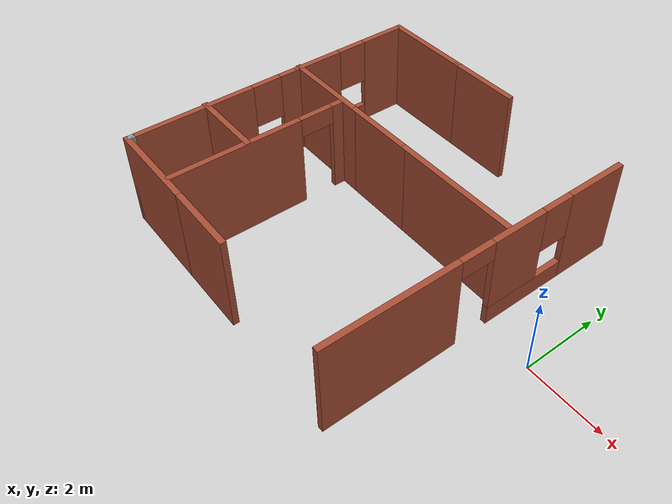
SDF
<sdf version="1.7">
 <model name="my_test_world">
  <link name="Wall_38">
   <pose>-1.46664 -0.111818 0 0 0 -1.5708</pose>
   <visual name="Wall_38_Visual_0">
    <pose>-3.31199 0 1.25 0 -0 0</pose>
    <geometry><box><size>1.62602 0.15 2.5</size></box></geometry>
    <material>
     <script><uri>file://media/materials/scripts/gazebo.material</uri><name>Gazebo/Bricks</name></script>
     <ambient>1 1 1 1</ambient>
     <shader type="pixel"/>
    </material>
    <meta><layer>0</layer></meta>
   </visual>
   <visual name="Wall_38_Visual_2">
    <pose>-1.36745 0 0.25 0 -0 0</pose>
    <geometry><box><size>2.26306 0.15 0.5</size></box></geometry>
    <material>
     <script><uri>file://media/materials/scripts/gazebo.material</uri><name>Gazebo/Bricks</name></script>
     <ambient>1 1 1 1</ambient>
     <shader type="pixel"/>
    </material>
    <meta><layer>0</layer></meta>
   </visual>
   <visual name="Wall_38_Visual_1">
    <pose>2.39454 0 1.25 0 -0 0</pose>
    <geometry><box><size>3.46092 0.15 2.5</size></box></geometry>
    <material>
     <script><uri>file://media/materials/scripts/gazebo.material</uri><name>Gazebo/Bricks</name></script>
     <ambient>1 1 1 1</ambient>
     <shader type="pixel"/>
    </material>
    <meta><layer>0</layer></meta>
   </visual>
   <visual name="Wall_38_Visual_3">
    <pose>-0.967453 0 1.5 0 -0 0</pose>
    <geometry><box><size>1.46306 0.15 2</size></box></geometry>
    <material>
     <script><uri>file://media/materials/scripts/gazebo.material</uri><name>Gazebo/Bricks</name></script>
     <ambient>1 1 1 1</ambient>
     <shader type="pixel"/>
    </material>
    <meta><layer>0</layer></meta>
   </visual>
   <visual name="Wall_38_Visual_4">
    <pose>-2.09898 0 1.9 0 -0 0</pose>
    <geometry><box><size>0.8 0.15 1.2</size></box></geometry>
    <material>
     <script><uri>file://media/materials/scripts/gazebo.material</uri><name>Gazebo/Bricks</name></script>
     <ambient>1 1 1 1</ambient>
     <shader type="pixel"/>
    </material>
    <meta><layer>0</layer></meta>
   </visual>
   <visual name="Wall_38_Visual_5">
    <pose>0.214077 0 2.25 0 -0 0</pose>
    <geometry><box><size>0.9 0.15 0.5</size></box></geometry>
    <material>
     <script><uri>file://media/materials/scripts/gazebo.material</uri><name>Gazebo/Bricks</name></script>
     <ambient>1 1 1 1</ambient>
     <shader type="pixel"/>
    </material>
    <meta><layer>0</layer></meta>
   </visual>
   <collision name="Wall_38_Collision_0">
    <pose>-3.31199 0 1.25 0 -0 0</pose>
    <geometry><box><size>1.62602 0.15 2.5</size></box></geometry>
    <surface>
     <friction>
      <ode><mu>1</mu><mu2>1</mu2><fdir1>0 0 0</fdir1><slip1>0</slip1><slip2>0</slip2></ode>
      <torsional>
       <coefficient>1</coefficient>
       <patch_radius>0</patch_radius>
       <surface_radius>0</surface_radius>
       <use_patch_radius>1</use_patch_radius>
       <ode><slip>0</slip></ode>
      </torsional>
     </friction>
     <bounce><restitution_coefficient>0</restitution_coefficient><threshold>1e+06</threshold></bounce>
     <contact>
      <collide_without_contact>0</collide_without_contact>
      <collide_without_contact_bitmask>1</collide_without_contact_bitmask>
      <collide_bitmask>1</collide_bitmask>
      <ode>
       <soft_cfm>0</soft_cfm>
       <soft_erp>0.2</soft_erp>
       <kp>1e+13</kp>
       <kd>1</kd>
       <max_vel>0.01</max_vel>
       <min_depth>0</min_depth>
      </ode>
      <bullet>
       <split_impulse>1</split_impulse>
       <split_impulse_penetration_threshold>-0.01</split_impulse_penetration_threshold>
       <soft_cfm>0</soft_cfm>
       <soft_erp>0.2</soft_erp>
       <kp>1e+13</kp>
       <kd>1</kd>
      </bullet>
     </contact>
    </surface>
   </collision>
   <collision name="Wall_38_Collision_1">
    <pose>2.39454 0 1.25 0 -0 0</pose>
    <geometry><box><size>3.46092 0.15 2.5</size></box></geometry>
    <surface>
     <friction>
      <ode><mu>1</mu><mu2>1</mu2><fdir1>0 0 0</fdir1><slip1>0</slip1><slip2>0</slip2></ode>
      <torsional>
       <coefficient>1</coefficient>
       <patch_radius>0</patch_radius>
       <surface_radius>0</surface_radius>
       <use_patch_radius>1</use_patch_radius>
       <ode><slip>0</slip></ode>
      </torsional>
     </friction>
     <bounce><restitution_coefficient>0</restitution_coefficient><threshold>1e+06</threshold></bounce>
     <contact>
      <collide_without_contact>0</collide_without_contact>
      <collide_without_contact_bitmask>1</collide_without_contact_bitmask>
      <collide_bitmask>1</collide_bitmask>
      <ode>
       <soft_cfm>0</soft_cfm>
       <soft_erp>0.2</soft_erp>
       <kp>1e+13</kp>
       <kd>1</kd>
       <max_vel>0.01</max_vel>
       <min_depth>0</min_depth>
      </ode>
      <bullet>
       <split_impulse>1</split_impulse>
       <split_impulse_penetration_threshold>-0.01</split_impulse_penetration_threshold>
       <soft_cfm>0</soft_cfm>
       <soft_erp>0.2</soft_erp>
       <kp>1e+13</kp>
       <kd>1</kd>
      </bullet>
     </contact>
    </surface>
   </collision>
   <collision name="Wall_38_Collision_2">
    <pose>-1.36745 0 0.25 0 -0 0</pose>
    <geometry><box><size>2.26306 0.15 0.5</size></box></geometry>
    <surface>
     <friction>
      <ode><mu>1</mu><mu2>1</mu2><fdir1>0 0 0</fdir1><slip1>0</slip1><slip2>0</slip2></ode>
      <torsional>
       <coefficient>1</coefficient>
       <patch_radius>0</patch_radius>
       <surface_radius>0</surface_radius>
       <use_patch_radius>1</use_patch_radius>
       <ode><slip>0</slip></ode>
      </torsional>
     </friction>
     <bounce><restitution_coefficient>0</restitution_coefficient><threshold>1e+06</threshold></bounce>
     <contact>
      <collide_without_contact>0</collide_without_contact>
      <collide_without_contact_bitmask>1</collide_without_contact_bitmask>
      <collide_bitmask>1</collide_bitmask>
      <ode>
       <soft_cfm>0</soft_cfm>
       <soft_erp>0.2</soft_erp>
       <kp>1e+13</kp>
       <kd>1</kd>
       <max_vel>0.01</max_vel>
       <min_depth>0</min_depth>
      </ode>
      <bullet>
       <split_impulse>1</split_impulse>
       <split_impulse_penetration_threshold>-0.01</split_impulse_penetration_threshold>
       <soft_cfm>0</soft_cfm>
       <soft_erp>0.2</soft_erp>
       <kp>1e+13</kp>
       <kd>1</kd>
      </bullet>
     </contact>
    </surface>
   </collision>
   <collision name="Wall_38_Collision_3">
    <pose>-0.967453 0 1.5 0 -0 0</pose>
    <geometry><box><size>1.46306 0.15 2</size></box></geometry>
    <surface>
     <friction>
      <ode><mu>1</mu><mu2>1</mu2><fdir1>0 0 0</fdir1><slip1>0</slip1><slip2>0</slip2></ode>
      <torsional>
       <coefficient>1</coefficient>
       <patch_radius>0</patch_radius>
       <surface_radius>0</surface_radius>
       <use_patch_radius>1</use_patch_radius>
       <ode><slip>0</slip></ode>
      </torsional>
     </friction>
     <bounce><restitution_coefficient>0</restitution_coefficient><threshold>1e+06</threshold></bounce>
     <contact>
      <collide_without_contact>0</collide_without_contact>
      <collide_without_contact_bitmask>1</collide_without_contact_bitmask>
      <collide_bitmask>1</collide_bitmask>
      <ode>
       <soft_cfm>0</soft_cfm>
       <soft_erp>0.2</soft_erp>
       <kp>1e+13</kp>
       <kd>1</kd>
       <max_vel>0.01</max_vel>
       <min_depth>0</min_depth>
      </ode>
      <bullet>
       <split_impulse>1</split_impulse>
       <split_impulse_penetration_threshold>-0.01</split_impulse_penetration_threshold>
       <soft_cfm>0</soft_cfm>
       <soft_erp>0.2</soft_erp>
       <kp>1e+13</kp>
       <kd>1</kd>
      </bullet>
     </contact>
    </surface>
   </collision>
   <collision name="Wall_38_Collision_4">
    <pose>-2.09898 0 1.9 0 -0 0</pose>
    <geometry><box><size>0.8 0.15 1.2</size></box></geometry>
    <surface>
     <friction>
      <ode><mu>1</mu><mu2>1</mu2><fdir1>0 0 0</fdir1><slip1>0</slip1><slip2>0</slip2></ode>
      <torsional>
       <coefficient>1</coefficient>
       <patch_radius>0</patch_radius>
       <surface_radius>0</surface_radius>
       <use_patch_radius>1</use_patch_radius>
       <ode><slip>0</slip></ode>
      </torsional>
     </friction>
     <bounce><restitution_coefficient>0</restitution_coefficient><threshold>1e+06</threshold></bounce>
     <contact>
      <collide_without_contact>0</collide_without_contact>
      <collide_without_contact_bitmask>1</collide_without_contact_bitmask>
      <collide_bitmask>1</collide_bitmask>
      <ode>
       <soft_cfm>0</soft_cfm>
       <soft_erp>0.2</soft_erp>
       <kp>1e+13</kp>
       <kd>1</kd>
       <max_vel>0.01</max_vel>
       <min_depth>0</min_depth>
      </ode>
      <bullet>
       <split_impulse>1</split_impulse>
       <split_impulse_penetration_threshold>-0.01</split_impulse_penetration_threshold>
       <soft_cfm>0</soft_cfm>
       <soft_erp>0.2</soft_erp>
       <kp>1e+13</kp>
       <kd>1</kd>
      </bullet>
     </contact>
    </surface>
   </collision>
   <collision name="Wall_38_Collision_5">
    <pose>0.214077 0 2.25 0 -0 0</pose>
    <geometry><box><size>0.9 0.15 0.5</size></box></geometry>
    <surface>
     <friction>
      <ode><mu>1</mu><mu2>1</mu2><fdir1>0 0 0</fdir1><slip1>0</slip1><slip2>0</slip2></ode>
      <torsional>
       <coefficient>1</coefficient>
       <patch_radius>0</patch_radius>
       <surface_radius>0</surface_radius>
       <use_patch_radius>1</use_patch_radius>
       <ode><slip>0</slip></ode>
      </torsional>
     </friction>
     <bounce><restitution_coefficient>0</restitution_coefficient><threshold>1e+06</threshold></bounce>
     <contact>
      <collide_without_contact>0</collide_without_contact>
      <collide_without_contact_bitmask>1</collide_without_contact_bitmask>
      <collide_bitmask>1</collide_bitmask>
      <ode>
       <soft_cfm>0</soft_cfm>
       <soft_erp>0.2</soft_erp>
       <kp>1e+13</kp>
       <kd>1</kd>
       <max_vel>0.01</max_vel>
       <min_depth>0</min_depth>
      </ode>
      <bullet>
       <split_impulse>1</split_impulse>
       <split_impulse_penetration_threshold>-0.01</split_impulse_penetration_threshold>
       <soft_cfm>0</soft_cfm>
       <soft_erp>0.2</soft_erp>
       <kp>1e+13</kp>
       <kd>1</kd>
      </bullet>
     </contact>
    </surface>
   </collision>
  </link>
  <link name="Wall_40">
   <pose>-3.16176 0.639556 0 0 -0 3.14159</pose>
   <visual name="Wall_40_Visual">
    <pose>0 0 1.25 0 -0 0</pose>
    <geometry><box><size>3.5 0.15 2.5</size></box></geometry>
    <material>
     <script><uri>file://media/materials/scripts/gazebo.material</uri><name>Gazebo/Bricks</name></script>
     <ambient>1 1 1 1</ambient>
     <shader type="pixel"/>
    </material>
    <meta><layer>0</layer></meta>
   </visual>
   <collision name="Wall_40_Collision">
    <pose>0 0 1.25 0 -0 0</pose>
    <geometry><box><size>3.5 0.15 2.5</size></box></geometry>
    <surface>
     <friction>
      <ode><mu>1</mu><mu2>1</mu2><fdir1>0 0 0</fdir1><slip1>0</slip1><slip2>0</slip2></ode>
      <torsional>
       <coefficient>1</coefficient>
       <patch_radius>0</patch_radius>
       <surface_radius>0</surface_radius>
       <use_patch_radius>1</use_patch_radius>
       <ode><slip>0</slip></ode>
      </torsional>
     </friction>
     <bounce><restitution_coefficient>0</restitution_coefficient><threshold>1e+06</threshold></bounce>
     <contact>
      <collide_without_contact>0</collide_without_contact>
      <collide_without_contact_bitmask>1</collide_without_contact_bitmask>
      <collide_bitmask>1</collide_bitmask>
      <ode>
       <soft_cfm>0</soft_cfm>
       <soft_erp>0.2</soft_erp>
       <kp>1e+13</kp>
       <kd>1</kd>
       <max_vel>0.01</max_vel>
       <min_depth>0</min_depth>
      </ode>
      <bullet>
       <split_impulse>1</split_impulse>
       <split_impulse_penetration_threshold>-0.01</split_impulse_penetration_threshold>
       <soft_cfm>0</soft_cfm>
       <soft_erp>0.2</soft_erp>
       <kp>1e+13</kp>
       <kd>1</kd>
      </bullet>
     </contact>
    </surface>
   </collision>
  </link>
  <link name="Wall_42">
   <pose>-5.72599 -4.15318 0 0 -0 3.14159</pose>
   <visual name="Wall_42_Visual">
    <pose>0 0 1.25 0 -0 0</pose>
    <geometry><box><size>2 0.15 2.5</size></box></geometry>
    <material>
     <script><uri>file://media/materials/scripts/gazebo.material</uri><name>Gazebo/Bricks</name></script>
     <ambient>1 1 1 1</ambient>
     <shader type="pixel"/>
    </material>
    <meta><layer>0</layer></meta>
   </visual>
   <collision name="Wall_42_Collision">
    <pose>0 0 1.25 0 -0 0</pose>
    <geometry><box><size>2 0.15 2.5</size></box></geometry>
    <surface>
     <friction>
      <ode><mu>1</mu><mu2>1</mu2><fdir1>0 0 0</fdir1><slip1>0</slip1><slip2>0</slip2></ode>
      <torsional>
       <coefficient>1</coefficient>
       <patch_radius>0</patch_radius>
       <surface_radius>0</surface_radius>
       <use_patch_radius>1</use_patch_radius>
       <ode><slip>0</slip></ode>
      </torsional>
     </friction>
     <bounce><restitution_coefficient>0</restitution_coefficient><threshold>1e+06</threshold></bounce>
     <contact>
      <collide_without_contact>0</collide_without_contact>
      <collide_without_contact_bitmask>1</collide_without_contact_bitmask>
      <collide_bitmask>1</collide_bitmask>
      <ode>
       <soft_cfm>0</soft_cfm>
       <soft_erp>0.2</soft_erp>
       <kp>1e+13</kp>
       <kd>1</kd>
       <max_vel>0.01</max_vel>
       <min_depth>0</min_depth>
      </ode>
      <bullet>
       <split_impulse>1</split_impulse>
       <split_impulse_penetration_threshold>-0.01</split_impulse_penetration_threshold>
       <soft_cfm>0</soft_cfm>
       <soft_erp>0.2</soft_erp>
       <kp>1e+13</kp>
       <kd>1</kd>
      </bullet>
     </contact>
    </surface>
   </collision>
  </link>
  <link name="Wall_46">
   <pose>-5.72599 3.89682 0 0 -0 3.14159</pose>
   <visual name="Wall_46_Visual">
    <pose>0 0 1.25 0 -0 0</pose>
    <geometry><box><size>2 0.15 2.5</size></box></geometry>
    <material>
     <script><uri>file://media/materials/scripts/gazebo.material</uri><name>Gazebo/Bricks</name></script>
     <ambient>1 1 1 1</ambient>
     <shader type="pixel"/>
    </material>
    <meta><layer>0</layer></meta>
   </visual>
   <collision name="Wall_46_Collision">
    <pose>0 0 1.25 0 -0 0</pose>
    <geometry><box><size>2 0.15 2.5</size></box></geometry>
    <surface>
     <friction>
      <ode><mu>1</mu><mu2>1</mu2><fdir1>0 0 0</fdir1><slip1>0</slip1><slip2>0</slip2></ode>
      <torsional>
       <coefficient>1</coefficient>
       <patch_radius>0</patch_radius>
       <surface_radius>0</surface_radius>
       <use_patch_radius>1</use_patch_radius>
       <ode><slip>0</slip></ode>
      </torsional>
     </friction>
     <bounce><restitution_coefficient>0</restitution_coefficient><threshold>1e+06</threshold></bounce>
     <contact>
      <collide_without_contact>0</collide_without_contact>
      <collide_without_contact_bitmask>1</collide_without_contact_bitmask>
      <collide_bitmask>1</collide_bitmask>
      <ode>
       <soft_cfm>0</soft_cfm>
       <soft_erp>0.2</soft_erp>
       <kp>1e+13</kp>
       <kd>1</kd>
       <max_vel>0.01</max_vel>
       <min_depth>0</min_depth>
      </ode>
      <bullet>
       <split_impulse>1</split_impulse>
       <split_impulse_penetration_threshold>-0.01</split_impulse_penetration_threshold>
       <soft_cfm>0</soft_cfm>
       <soft_erp>0.2</soft_erp>
       <kp>1e+13</kp>
       <kd>1</kd>
      </bullet>
     </contact>
    </surface>
   </collision>
  </link>
  <link name="Wall_48">
   <pose>-5.76176 0.639556 0 0 -0 3.14159</pose>
   <visual name="Wall_48_Visual">
    <pose>0 0 1.25 0 -0 0</pose>
    <geometry><box><size>2 0.15 2.5</size></box></geometry>
    <material>
     <script><uri>file://media/materials/scripts/gazebo.material</uri><name>Gazebo/Bricks</name></script>
     <ambient>1 1 1 1</ambient>
     <shader type="pixel"/>
    </material>
    <meta><layer>0</layer></meta>
   </visual>
   <collision name="Wall_48_Collision">
    <pose>0 0 1.25 0 -0 0</pose>
    <geometry><box><size>2 0.15 2.5</size></box></geometry>
    <surface>
     <friction>
      <ode><mu>1</mu><mu2>1</mu2><fdir1>0 0 0</fdir1><slip1>0</slip1><slip2>0</slip2></ode>
      <torsional>
       <coefficient>1</coefficient>
       <patch_radius>0</patch_radius>
       <surface_radius>0</surface_radius>
       <use_patch_radius>1</use_patch_radius>
       <ode><slip>0</slip></ode>
      </torsional>
     </friction>
     <bounce><restitution_coefficient>0</restitution_coefficient><threshold>1e+06</threshold></bounce>
     <contact>
      <collide_without_contact>0</collide_without_contact>
      <collide_without_contact_bitmask>1</collide_without_contact_bitmask>
      <collide_bitmask>1</collide_bitmask>
      <ode>
       <soft_cfm>0</soft_cfm>
       <soft_erp>0.2</soft_erp>
       <kp>1e+13</kp>
       <kd>1</kd>
       <max_vel>0.01</max_vel>
       <min_depth>0</min_depth>
      </ode>
      <bullet>
       <split_impulse>1</split_impulse>
       <split_impulse_penetration_threshold>-0.01</split_impulse_penetration_threshold>
       <soft_cfm>0</soft_cfm>
       <soft_erp>0.2</soft_erp>
       <kp>1e+13</kp>
       <kd>1</kd>
      </bullet>
     </contact>
    </surface>
   </collision>
  </link>
  <link name="Wall_50">
   <pose>-7.82599 3.89682 0 0 -0 3.14159</pose>
   <visual name="Wall_50_Visual">
    <pose>0 0 1.25 0 -0 0</pose>
    <geometry><box><size>2.5 0.15 2.5</size></box></geometry>
    <material>
     <script><uri>file://media/materials/scripts/gazebo.material</uri><name>Gazebo/Bricks</name></script>
     <ambient>1 1 1 1</ambient>
     <shader type="pixel"/>
    </material>
    <meta><layer>0</layer></meta>
   </visual>
   <collision name="Wall_50_Collision">
    <pose>0 0 1.25 0 -0 0</pose>
    <geometry><box><size>2.5 0.15 2.5</size></box></geometry>
    <surface>
     <friction>
      <ode><mu>1</mu><mu2>1</mu2><fdir1>0 0 0</fdir1><slip1>0</slip1><slip2>0</slip2></ode>
      <torsional>
       <coefficient>1</coefficient>
       <patch_radius>0</patch_radius>
       <surface_radius>0</surface_radius>
       <use_patch_radius>1</use_patch_radius>
       <ode><slip>0</slip></ode>
      </torsional>
     </friction>
     <bounce><restitution_coefficient>0</restitution_coefficient><threshold>1e+06</threshold></bounce>
     <contact>
      <collide_without_contact>0</collide_without_contact>
      <collide_without_contact_bitmask>1</collide_without_contact_bitmask>
      <collide_bitmask>1</collide_bitmask>
      <ode>
       <soft_cfm>0</soft_cfm>
       <soft_erp>0.2</soft_erp>
       <kp>1e+13</kp>
       <kd>1</kd>
       <max_vel>0.01</max_vel>
       <min_depth>0</min_depth>
      </ode>
      <bullet>
       <split_impulse>1</split_impulse>
       <split_impulse_penetration_threshold>-0.01</split_impulse_penetration_threshold>
       <soft_cfm>0</soft_cfm>
       <soft_erp>0.2</soft_erp>
       <kp>1e+13</kp>
       <kd>1</kd>
      </bullet>
     </contact>
    </surface>
   </collision>
  </link>
  <link name="Wall_51">
   <pose>-9.00099 2.22182 0 0 0 -1.5708</pose>
   <visual name="Wall_51_Visual_0">
    <pose>-1.08841 0 1.25 0 -0 0</pose>
    <geometry><box><size>1.32318 0.15 2.5</size></box></geometry>
    <material>
     <script><uri>file://media/materials/scripts/gazebo.material</uri><name>Gazebo/Bricks</name></script>
     <ambient>1 1 1 1</ambient>
     <shader type="pixel"/>
    </material>
    <meta><layer>0</layer></meta>
   </visual>
   <visual name="Wall_51_Visual_1">
    <pose>0.661589 0 0.25 0 -0 0</pose>
    <geometry><box><size>2.17682 0.15 0.5</size></box></geometry>
    <material>
     <script><uri>file://media/materials/scripts/gazebo.material</uri><name>Gazebo/Bricks</name></script>
     <ambient>1 1 1 1</ambient>
     <shader type="pixel"/>
    </material>
    <meta><layer>0</layer></meta>
   </visual>
   <visual name="Wall_51_Visual_2">
    <pose>1.06159 0 1.5 0 -0 0</pose>
    <geometry><box><size>1.37682 0.15 2</size></box></geometry>
    <material>
     <script><uri>file://media/materials/scripts/gazebo.material</uri><name>Gazebo/Bricks</name></script>
     <ambient>1 1 1 1</ambient>
     <shader type="pixel"/>
    </material>
    <meta><layer>0</layer></meta>
   </visual>
   <visual name="Wall_51_Visual_3">
    <pose>-0.026823 0 1.9 0 -0 0</pose>
    <geometry><box><size>0.8 0.15 1.2</size></box></geometry>
    <material>
     <script><uri>file://media/materials/scripts/gazebo.material</uri><name>Gazebo/Bricks</name></script>
     <ambient>1 1 1 1</ambient>
     <shader type="pixel"/>
    </material>
    <meta><layer>0</layer></meta>
   </visual>
   <collision name="Wall_51_Collision_0">
    <pose>-1.08841 0 1.25 0 -0 0</pose>
    <geometry><box><size>1.32318 0.15 2.5</size></box></geometry>
    <surface>
     <friction>
      <ode><mu>1</mu><mu2>1</mu2><fdir1>0 0 0</fdir1><slip1>0</slip1><slip2>0</slip2></ode>
      <torsional>
       <coefficient>1</coefficient>
       <patch_radius>0</patch_radius>
       <surface_radius>0</surface_radius>
       <use_patch_radius>1</use_patch_radius>
       <ode><slip>0</slip></ode>
      </torsional>
     </friction>
     <bounce><restitution_coefficient>0</restitution_coefficient><threshold>1e+06</threshold></bounce>
     <contact>
      <collide_without_contact>0</collide_without_contact>
      <collide_without_contact_bitmask>1</collide_without_contact_bitmask>
      <collide_bitmask>1</collide_bitmask>
      <ode>
       <soft_cfm>0</soft_cfm>
       <soft_erp>0.2</soft_erp>
       <kp>1e+13</kp>
       <kd>1</kd>
       <max_vel>0.01</max_vel>
       <min_depth>0</min_depth>
      </ode>
      <bullet>
       <split_impulse>1</split_impulse>
       <split_impulse_penetration_threshold>-0.01</split_impulse_penetration_threshold>
       <soft_cfm>0</soft_cfm>
       <soft_erp>0.2</soft_erp>
       <kp>1e+13</kp>
       <kd>1</kd>
      </bullet>
     </contact>
    </surface>
   </collision>
   <collision name="Wall_51_Collision_1">
    <pose>0.661589 0 0.25 0 -0 0</pose>
    <geometry><box><size>2.17682 0.15 0.5</size></box></geometry>
    <surface>
     <friction>
      <ode><mu>1</mu><mu2>1</mu2><fdir1>0 0 0</fdir1><slip1>0</slip1><slip2>0</slip2></ode>
      <torsional>
       <coefficient>1</coefficient>
       <patch_radius>0</patch_radius>
       <surface_radius>0</surface_radius>
       <use_patch_radius>1</use_patch_radius>
       <ode><slip>0</slip></ode>
      </torsional>
     </friction>
     <bounce><restitution_coefficient>0</restitution_coefficient><threshold>1e+06</threshold></bounce>
     <contact>
      <collide_without_contact>0</collide_without_contact>
      <collide_without_contact_bitmask>1</collide_without_contact_bitmask>
      <collide_bitmask>1</collide_bitmask>
      <ode>
       <soft_cfm>0</soft_cfm>
       <soft_erp>0.2</soft_erp>
       <kp>1e+13</kp>
       <kd>1</kd>
       <max_vel>0.01</max_vel>
       <min_depth>0</min_depth>
      </ode>
      <bullet>
       <split_impulse>1</split_impulse>
       <split_impulse_penetration_threshold>-0.01</split_impulse_penetration_threshold>
       <soft_cfm>0</soft_cfm>
       <soft_erp>0.2</soft_erp>
       <kp>1e+13</kp>
       <kd>1</kd>
      </bullet>
     </contact>
    </surface>
   </collision>
   <collision name="Wall_51_Collision_2">
    <pose>1.06159 0 1.5 0 -0 0</pose>
    <geometry><box><size>1.37682 0.15 2</size></box></geometry>
    <surface>
     <friction>
      <ode><mu>1</mu><mu2>1</mu2><fdir1>0 0 0</fdir1><slip1>0</slip1><slip2>0</slip2></ode>
      <torsional>
       <coefficient>1</coefficient>
       <patch_radius>0</patch_radius>
       <surface_radius>0</surface_radius>
       <use_patch_radius>1</use_patch_radius>
       <ode><slip>0</slip></ode>
      </torsional>
     </friction>
     <bounce><restitution_coefficient>0</restitution_coefficient><threshold>1e+06</threshold></bounce>
     <contact>
      <collide_without_contact>0</collide_without_contact>
      <collide_without_contact_bitmask>1</collide_without_contact_bitmask>
      <collide_bitmask>1</collide_bitmask>
      <ode>
       <soft_cfm>0</soft_cfm>
       <soft_erp>0.2</soft_erp>
       <kp>1e+13</kp>
       <kd>1</kd>
       <max_vel>0.01</max_vel>
       <min_depth>0</min_depth>
      </ode>
      <bullet>
       <split_impulse>1</split_impulse>
       <split_impulse_penetration_threshold>-0.01</split_impulse_penetration_threshold>
       <soft_cfm>0</soft_cfm>
       <soft_erp>0.2</soft_erp>
       <kp>1e+13</kp>
       <kd>1</kd>
      </bullet>
     </contact>
    </surface>
   </collision>
   <collision name="Wall_51_Collision_3">
    <pose>-0.026823 0 1.9 0 -0 0</pose>
    <geometry><box><size>0.8 0.15 1.2</size></box></geometry>
    <surface>
     <friction>
      <ode><mu>1</mu><mu2>1</mu2><fdir1>0 0 0</fdir1><slip1>0</slip1><slip2>0</slip2></ode>
      <torsional>
       <coefficient>1</coefficient>
       <patch_radius>0</patch_radius>
       <surface_radius>0</surface_radius>
       <use_patch_radius>1</use_patch_radius>
       <ode><slip>0</slip></ode>
      </torsional>
     </friction>
     <bounce><restitution_coefficient>0</restitution_coefficient><threshold>1e+06</threshold></bounce>
     <contact>
      <collide_without_contact>0</collide_without_contact>
      <collide_without_contact_bitmask>1</collide_without_contact_bitmask>
      <collide_bitmask>1</collide_bitmask>
      <ode>
       <soft_cfm>0</soft_cfm>
       <soft_erp>0.2</soft_erp>
       <kp>1e+13</kp>
       <kd>1</kd>
       <max_vel>0.01</max_vel>
       <min_depth>0</min_depth>
      </ode>
      <bullet>
       <split_impulse>1</split_impulse>
       <split_impulse_penetration_threshold>-0.01</split_impulse_penetration_threshold>
       <soft_cfm>0</soft_cfm>
       <soft_erp>0.2</soft_erp>
       <kp>1e+13</kp>
       <kd>1</kd>
      </bullet>
     </contact>
    </surface>
   </collision>
  </link>
  <link name="Wall_52">
   <pose>-9.00099 -1.75318 0 0 0 -1.5708</pose>
   <visual name="Wall_52_Visual_0">
    <pose>-2.06092 0 1.25 0 -0 0</pose>
    <geometry><box><size>0.628169 0.15 2.5</size></box></geometry>
    <material>
     <script><uri>file://media/materials/scripts/gazebo.material</uri><name>Gazebo/Bricks</name></script>
     <ambient>1 1 1 1</ambient>
     <shader type="pixel"/>
    </material>
    <meta><layer>0</layer></meta>
   </visual>
   <visual name="Wall_52_Visual_1">
    <pose>0.314084 0 0.25 0 -0 0</pose>
    <geometry><box><size>4.12183 0.15 0.5</size></box></geometry>
    <material>
     <script><uri>file://media/materials/scripts/gazebo.material</uri><name>Gazebo/Bricks</name></script>
     <ambient>1 1 1 1</ambient>
     <shader type="pixel"/>
    </material>
    <meta><layer>0</layer></meta>
   </visual>
   <visual name="Wall_52_Visual_2">
    <pose>0.714084 0 1.5 0 -0 0</pose>
    <geometry><box><size>3.32183 0.15 2</size></box></geometry>
    <material>
     <script><uri>file://media/materials/scripts/gazebo.material</uri><name>Gazebo/Bricks</name></script>
     <ambient>1 1 1 1</ambient>
     <shader type="pixel"/>
    </material>
    <meta><layer>0</layer></meta>
   </visual>
   <visual name="Wall_52_Visual_3">
    <pose>-1.34683 0 1.9 0 -0 0</pose>
    <geometry><box><size>0.8 0.15 1.2</size></box></geometry>
    <material>
     <script><uri>file://media/materials/scripts/gazebo.material</uri><name>Gazebo/Bricks</name></script>
     <ambient>1 1 1 1</ambient>
     <shader type="pixel"/>
    </material>
    <meta><layer>0</layer></meta>
   </visual>
   <collision name="Wall_52_Collision_1">
    <pose>0.314084 0 0.25 0 -0 0</pose>
    <geometry><box><size>4.12183 0.15 0.5</size></box></geometry>
    <surface>
     <friction>
      <ode><mu>1</mu><mu2>1</mu2><fdir1>0 0 0</fdir1><slip1>0</slip1><slip2>0</slip2></ode>
      <torsional>
       <coefficient>1</coefficient>
       <patch_radius>0</patch_radius>
       <surface_radius>0</surface_radius>
       <use_patch_radius>1</use_patch_radius>
       <ode><slip>0</slip></ode>
      </torsional>
     </friction>
     <bounce><restitution_coefficient>0</restitution_coefficient><threshold>1e+06</threshold></bounce>
     <contact>
      <collide_without_contact>0</collide_without_contact>
      <collide_without_contact_bitmask>1</collide_without_contact_bitmask>
      <collide_bitmask>1</collide_bitmask>
      <ode>
       <soft_cfm>0</soft_cfm>
       <soft_erp>0.2</soft_erp>
       <kp>1e+13</kp>
       <kd>1</kd>
       <max_vel>0.01</max_vel>
       <min_depth>0</min_depth>
      </ode>
      <bullet>
       <split_impulse>1</split_impulse>
       <split_impulse_penetration_threshold>-0.01</split_impulse_penetration_threshold>
       <soft_cfm>0</soft_cfm>
       <soft_erp>0.2</soft_erp>
       <kp>1e+13</kp>
       <kd>1</kd>
      </bullet>
     </contact>
    </surface>
   </collision>
   <collision name="Wall_52_Collision_0">
    <pose>-2.06092 0 1.25 0 -0 0</pose>
    <geometry><box><size>0.628169 0.15 2.5</size></box></geometry>
    <surface>
     <friction>
      <ode><mu>1</mu><mu2>1</mu2><fdir1>0 0 0</fdir1><slip1>0</slip1><slip2>0</slip2></ode>
      <torsional>
       <coefficient>1</coefficient>
       <patch_radius>0</patch_radius>
       <surface_radius>0</surface_radius>
       <use_patch_radius>1</use_patch_radius>
       <ode><slip>0</slip></ode>
      </torsional>
     </friction>
     <bounce><restitution_coefficient>0</restitution_coefficient><threshold>1e+06</threshold></bounce>
     <contact>
      <collide_without_contact>0</collide_without_contact>
      <collide_without_contact_bitmask>1</collide_without_contact_bitmask>
      <collide_bitmask>1</collide_bitmask>
      <ode>
       <soft_cfm>0</soft_cfm>
       <soft_erp>0.2</soft_erp>
       <kp>1e+13</kp>
       <kd>1</kd>
       <max_vel>0.01</max_vel>
       <min_depth>0</min_depth>
      </ode>
      <bullet>
       <split_impulse>1</split_impulse>
       <split_impulse_penetration_threshold>-0.01</split_impulse_penetration_threshold>
       <soft_cfm>0</soft_cfm>
       <soft_erp>0.2</soft_erp>
       <kp>1e+13</kp>
       <kd>1</kd>
      </bullet>
     </contact>
    </surface>
   </collision>
   <collision name="Wall_52_Collision_2">
    <pose>0.714084 0 1.5 0 -0 0</pose>
    <geometry><box><size>3.32183 0.15 2</size></box></geometry>
    <surface>
     <friction>
      <ode><mu>1</mu><mu2>1</mu2><fdir1>0 0 0</fdir1><slip1>0</slip1><slip2>0</slip2></ode>
      <torsional>
       <coefficient>1</coefficient>
       <patch_radius>0</patch_radius>
       <surface_radius>0</surface_radius>
       <use_patch_radius>1</use_patch_radius>
       <ode><slip>0</slip></ode>
      </torsional>
     </friction>
     <bounce><restitution_coefficient>0</restitution_coefficient><threshold>1e+06</threshold></bounce>
     <contact>
      <collide_without_contact>0</collide_without_contact>
      <collide_without_contact_bitmask>1</collide_without_contact_bitmask>
      <collide_bitmask>1</collide_bitmask>
      <ode>
       <soft_cfm>0</soft_cfm>
       <soft_erp>0.2</soft_erp>
       <kp>1e+13</kp>
       <kd>1</kd>
       <max_vel>0.01</max_vel>
       <min_depth>0</min_depth>
      </ode>
      <bullet>
       <split_impulse>1</split_impulse>
       <split_impulse_penetration_threshold>-0.01</split_impulse_penetration_threshold>
       <soft_cfm>0</soft_cfm>
       <soft_erp>0.2</soft_erp>
       <kp>1e+13</kp>
       <kd>1</kd>
      </bullet>
     </contact>
    </surface>
   </collision>
   <collision name="Wall_52_Collision_3">
    <pose>-1.34683 0 1.9 0 -0 0</pose>
    <geometry><box><size>0.8 0.15 1.2</size></box></geometry>
    <surface>
     <friction>
      <ode><mu>1</mu><mu2>1</mu2><fdir1>0 0 0</fdir1><slip1>0</slip1><slip2>0</slip2></ode>
      <torsional>
       <coefficient>1</coefficient>
       <patch_radius>0</patch_radius>
       <surface_radius>0</surface_radius>
       <use_patch_radius>1</use_patch_radius>
       <ode><slip>0</slip></ode>
      </torsional>
     </friction>
     <bounce><restitution_coefficient>0</restitution_coefficient><threshold>1e+06</threshold></bounce>
     <contact>
      <collide_without_contact>0</collide_without_contact>
      <collide_without_contact_bitmask>1</collide_without_contact_bitmask>
      <collide_bitmask>1</collide_bitmask>
      <ode>
       <soft_cfm>0</soft_cfm>
       <soft_erp>0.2</soft_erp>
       <kp>1e+13</kp>
       <kd>1</kd>
       <max_vel>0.01</max_vel>
       <min_depth>0</min_depth>
      </ode>
      <bullet>
       <split_impulse>1</split_impulse>
       <split_impulse_penetration_threshold>-0.01</split_impulse_penetration_threshold>
       <soft_cfm>0</soft_cfm>
       <soft_erp>0.2</soft_erp>
       <kp>1e+13</kp>
       <kd>1</kd>
      </bullet>
     </contact>
    </surface>
   </collision>
  </link>
  <link name="Wall_53">
   <pose>-9.00099 -4.05318 0 0 -0 0</pose>
   <visual name="Wall_53_Visual">
    <pose>0 0 1.25 0 -0 0</pose>
    <geometry><box><size>0.15 0.15 2.5</size></box></geometry>
    <material>
     <script><uri>file://media/materials/scripts/gazebo.material</uri><name>Gazebo/Grey</name></script>
     <ambient>1 1 1 1</ambient>
     <shader type="pixel"/>
    </material>
    <meta><layer>0</layer></meta>
   </visual>
   <collision name="Wall_53_Collision">
    <pose>0 0 1.25 0 -0 0</pose>
    <geometry><box><size>0.15 0.15 2.5</size></box></geometry>
    <surface>
     <friction>
      <ode><mu>1</mu><mu2>1</mu2><fdir1>0 0 0</fdir1><slip1>0</slip1><slip2>0</slip2></ode>
      <torsional>
       <coefficient>1</coefficient>
       <patch_radius>0</patch_radius>
       <surface_radius>0</surface_radius>
       <use_patch_radius>1</use_patch_radius>
       <ode><slip>0</slip></ode>
      </torsional>
     </friction>
     <bounce><restitution_coefficient>0</restitution_coefficient><threshold>1e+06</threshold></bounce>
     <contact>
      <collide_without_contact>0</collide_without_contact>
      <collide_without_contact_bitmask>1</collide_without_contact_bitmask>
      <collide_bitmask>1</collide_bitmask>
      <ode>
       <soft_cfm>0</soft_cfm>
       <soft_erp>0.2</soft_erp>
       <kp>1e+13</kp>
       <kd>1</kd>
       <max_vel>0.01</max_vel>
       <min_depth>0</min_depth>
      </ode>
      <bullet>
       <split_impulse>1</split_impulse>
       <split_impulse_penetration_threshold>-0.01</split_impulse_penetration_threshold>
       <soft_cfm>0</soft_cfm>
       <soft_erp>0.2</soft_erp>
       <kp>1e+13</kp>
       <kd>1</kd>
      </bullet>
     </contact>
    </surface>
   </collision>
  </link>
  <link name="Wall_54">
   <pose>-9.00099 -4.10318 0 0 0 -1.5708</pose>
   <visual name="Wall_54_Visual">
    <pose>0 0 1.25 0 -0 0</pose>
    <geometry><box><size>0.25 0.15 2.5</size></box></geometry>
    <material>
     <script><uri>file://media/materials/scripts/gazebo.material</uri><name>Gazebo/Grey</name></script>
     <ambient>1 1 1 1</ambient>
     <shader type="pixel"/>
    </material>
    <meta><layer>0</layer></meta>
   </visual>
   <collision name="Wall_54_Collision">
    <pose>0 0 1.25 0 -0 0</pose>
    <geometry><box><size>0.25 0.15 2.5</size></box></geometry>
    <surface>
     <friction>
      <ode><mu>1</mu><mu2>1</mu2><fdir1>0 0 0</fdir1><slip1>0</slip1><slip2>0</slip2></ode>
      <torsional>
       <coefficient>1</coefficient>
       <patch_radius>0</patch_radius>
       <surface_radius>0</surface_radius>
       <use_patch_radius>1</use_patch_radius>
       <ode><slip>0</slip></ode>
      </torsional>
     </friction>
     <bounce><restitution_coefficient>0</restitution_coefficient><threshold>1e+06</threshold></bounce>
     <contact>
      <collide_without_contact>0</collide_without_contact>
      <collide_without_contact_bitmask>1</collide_without_contact_bitmask>
      <collide_bitmask>1</collide_bitmask>
      <ode>
       <soft_cfm>0</soft_cfm>
       <soft_erp>0.2</soft_erp>
       <kp>1e+13</kp>
       <kd>1</kd>
       <max_vel>0.01</max_vel>
       <min_depth>0</min_depth>
      </ode>
      <bullet>
       <split_impulse>1</split_impulse>
       <split_impulse_penetration_threshold>-0.01</split_impulse_penetration_threshold>
       <soft_cfm>0</soft_cfm>
       <soft_erp>0.2</soft_erp>
       <kp>1e+13</kp>
       <kd>1</kd>
      </bullet>
     </contact>
    </surface>
   </collision>
  </link>
  <link name="Wall_55">
   <pose>-7.82599 -4.15318 0 0 -0 0</pose>
   <visual name="Wall_55_Visual">
    <pose>0 0 1.25 0 -0 0</pose>
    <geometry><box><size>2.5 0.15 2.5</size></box></geometry>
    <material>
     <script><uri>file://media/materials/scripts/gazebo.material</uri><name>Gazebo/Bricks</name></script>
     <ambient>1 1 1 1</ambient>
     <shader type="pixel"/>
    </material>
    <meta><layer>0</layer></meta>
   </visual>
   <collision name="Wall_55_Collision">
    <pose>0 0 1.25 0 -0 0</pose>
    <geometry><box><size>2.5 0.15 2.5</size></box></geometry>
    <surface>
     <friction>
      <ode><mu>1</mu><mu2>1</mu2><fdir1>0 0 0</fdir1><slip1>0</slip1><slip2>0</slip2></ode>
      <torsional>
       <coefficient>1</coefficient>
       <patch_radius>0</patch_radius>
       <surface_radius>0</surface_radius>
       <use_patch_radius>1</use_patch_radius>
       <ode><slip>0</slip></ode>
      </torsional>
     </friction>
     <bounce><restitution_coefficient>0</restitution_coefficient><threshold>1e+06</threshold></bounce>
     <contact>
      <collide_without_contact>0</collide_without_contact>
      <collide_without_contact_bitmask>1</collide_without_contact_bitmask>
      <collide_bitmask>1</collide_bitmask>
      <ode>
       <soft_cfm>0</soft_cfm>
       <soft_erp>0.2</soft_erp>
       <kp>1e+13</kp>
       <kd>1</kd>
       <max_vel>0.01</max_vel>
       <min_depth>0</min_depth>
      </ode>
      <bullet>
       <split_impulse>1</split_impulse>
       <split_impulse_penetration_threshold>-0.01</split_impulse_penetration_threshold>
       <soft_cfm>0</soft_cfm>
       <soft_erp>0.2</soft_erp>
       <kp>1e+13</kp>
       <kd>1</kd>
      </bullet>
     </contact>
    </surface>
   </collision>
  </link>
  <link name="Wall_59">
   <pose>-7.86176 0.639556 0 0 -0 3.14159</pose>
   <visual name="Wall_59_Visual">
    <pose>0 0 1.25 0 -0 0</pose>
    <geometry><box><size>2.5 0.15 2.5</size></box></geometry>
    <material>
     <script><uri>file://media/materials/scripts/gazebo.material</uri><name>Gazebo/Bricks</name></script>
     <ambient>1 1 1 1</ambient>
     <shader type="pixel"/>
    </material>
    <meta><layer>0</layer></meta>
   </visual>
   <collision name="Wall_59_Collision">
    <pose>0 0 1.25 0 -0 0</pose>
    <geometry><box><size>2.5 0.15 2.5</size></box></geometry>
    <surface>
     <friction>
      <ode><mu>1</mu><mu2>1</mu2><fdir1>0 0 0</fdir1><slip1>0</slip1><slip2>0</slip2></ode>
      <torsional>
       <coefficient>1</coefficient>
       <patch_radius>0</patch_radius>
       <surface_radius>0</surface_radius>
       <use_patch_radius>1</use_patch_radius>
       <ode><slip>0</slip></ode>
      </torsional>
     </friction>
     <bounce><restitution_coefficient>0</restitution_coefficient><threshold>1e+06</threshold></bounce>
     <contact>
      <collide_without_contact>0</collide_without_contact>
      <collide_without_contact_bitmask>1</collide_without_contact_bitmask>
      <collide_bitmask>1</collide_bitmask>
      <ode>
       <soft_cfm>0</soft_cfm>
       <soft_erp>0.2</soft_erp>
       <kp>1e+13</kp>
       <kd>1</kd>
       <max_vel>0.01</max_vel>
       <min_depth>0</min_depth>
      </ode>
      <bullet>
       <split_impulse>1</split_impulse>
       <split_impulse_penetration_threshold>-0.01</split_impulse_penetration_threshold>
       <soft_cfm>0</soft_cfm>
       <soft_erp>0.2</soft_erp>
       <kp>1e+13</kp>
       <kd>1</kd>
      </bullet>
     </contact>
    </surface>
   </collision>
  </link>
  <link name="Wall_61">
   <pose>-7.1789 -1.74691 0 0 -0 1.5708</pose>
   <visual name="Wall_61_Visual_0">
    <pose>-0.631597 0 1.25 0 -0 0</pose>
    <geometry><box><size>3.48681 0.15 2.5</size></box></geometry>
    <material>
     <script><uri>file://media/materials/scripts/gazebo.material</uri><name>Gazebo/Bricks</name></script>
     <ambient>1 1 1 1</ambient>
     <shader type="pixel"/>
    </material>
    <meta><layer>0</layer></meta>
   </visual>
   <visual name="Wall_61_Visual_1">
    <pose>2.1934 0 1.25 0 -0 0</pose>
    <geometry><box><size>0.363194 0.15 2.5</size></box></geometry>
    <material>
     <script><uri>file://media/materials/scripts/gazebo.material</uri><name>Gazebo/Bricks</name></script>
     <ambient>1 1 1 1</ambient>
     <shader type="pixel"/>
    </material>
    <meta><layer>0</layer></meta>
   </visual>
   <visual name="Wall_61_Visual_2">
    <pose>1.56181 0 2.25 0 -0 0</pose>
    <geometry><box><size>0.9 0.15 0.5</size></box></geometry>
    <material>
     <script><uri>file://media/materials/scripts/gazebo.material</uri><name>Gazebo/Bricks</name></script>
     <ambient>1 1 1 1</ambient>
     <shader type="pixel"/>
    </material>
    <meta><layer>0</layer></meta>
   </visual>
   <collision name="Wall_61_Collision_0">
    <pose>-0.631597 0 1.25 0 -0 0</pose>
    <geometry><box><size>3.48681 0.15 2.5</size></box></geometry>
    <surface>
     <friction>
      <ode><mu>1</mu><mu2>1</mu2><fdir1>0 0 0</fdir1><slip1>0</slip1><slip2>0</slip2></ode>
      <torsional>
       <coefficient>1</coefficient>
       <patch_radius>0</patch_radius>
       <surface_radius>0</surface_radius>
       <use_patch_radius>1</use_patch_radius>
       <ode><slip>0</slip></ode>
      </torsional>
     </friction>
     <bounce><restitution_coefficient>0</restitution_coefficient><threshold>1e+06</threshold></bounce>
     <contact>
      <collide_without_contact>0</collide_without_contact>
      <collide_without_contact_bitmask>1</collide_without_contact_bitmask>
      <collide_bitmask>1</collide_bitmask>
      <ode>
       <soft_cfm>0</soft_cfm>
       <soft_erp>0.2</soft_erp>
       <kp>1e+13</kp>
       <kd>1</kd>
       <max_vel>0.01</max_vel>
       <min_depth>0</min_depth>
      </ode>
      <bullet>
       <split_impulse>1</split_impulse>
       <split_impulse_penetration_threshold>-0.01</split_impulse_penetration_threshold>
       <soft_cfm>0</soft_cfm>
       <soft_erp>0.2</soft_erp>
       <kp>1e+13</kp>
       <kd>1</kd>
      </bullet>
     </contact>
    </surface>
   </collision>
   <collision name="Wall_61_Collision_1">
    <pose>2.1934 0 1.25 0 -0 0</pose>
    <geometry><box><size>0.363194 0.15 2.5</size></box></geometry>
    <surface>
     <friction>
      <ode><mu>1</mu><mu2>1</mu2><fdir1>0 0 0</fdir1><slip1>0</slip1><slip2>0</slip2></ode>
      <torsional>
       <coefficient>1</coefficient>
       <patch_radius>0</patch_radius>
       <surface_radius>0</surface_radius>
       <use_patch_radius>1</use_patch_radius>
       <ode><slip>0</slip></ode>
      </torsional>
     </friction>
     <bounce><restitution_coefficient>0</restitution_coefficient><threshold>1e+06</threshold></bounce>
     <contact>
      <collide_without_contact>0</collide_without_contact>
      <collide_without_contact_bitmask>1</collide_without_contact_bitmask>
      <collide_bitmask>1</collide_bitmask>
      <ode>
       <soft_cfm>0</soft_cfm>
       <soft_erp>0.2</soft_erp>
       <kp>1e+13</kp>
       <kd>1</kd>
       <max_vel>0.01</max_vel>
       <min_depth>0</min_depth>
      </ode>
      <bullet>
       <split_impulse>1</split_impulse>
       <split_impulse_penetration_threshold>-0.01</split_impulse_penetration_threshold>
       <soft_cfm>0</soft_cfm>
       <soft_erp>0.2</soft_erp>
       <kp>1e+13</kp>
       <kd>1</kd>
      </bullet>
     </contact>
    </surface>
   </collision>
   <collision name="Wall_61_Collision_2">
    <pose>1.56181 0 2.25 0 -0 0</pose>
    <geometry><box><size>0.9 0.15 0.5</size></box></geometry>
    <surface>
     <friction>
      <ode><mu>1</mu><mu2>1</mu2><fdir1>0 0 0</fdir1><slip1>0</slip1><slip2>0</slip2></ode>
      <torsional>
       <coefficient>1</coefficient>
       <patch_radius>0</patch_radius>
       <surface_radius>0</surface_radius>
       <use_patch_radius>1</use_patch_radius>
       <ode><slip>0</slip></ode>
      </torsional>
     </friction>
     <bounce><restitution_coefficient>0</restitution_coefficient><threshold>1e+06</threshold></bounce>
     <contact>
      <collide_without_contact>0</collide_without_contact>
      <collide_without_contact_bitmask>1</collide_without_contact_bitmask>
      <collide_bitmask>1</collide_bitmask>
      <ode>
       <soft_cfm>0</soft_cfm>
       <soft_erp>0.2</soft_erp>
       <kp>1e+13</kp>
       <kd>1</kd>
       <max_vel>0.01</max_vel>
       <min_depth>0</min_depth>
      </ode>
      <bullet>
       <split_impulse>1</split_impulse>
       <split_impulse_penetration_threshold>-0.01</split_impulse_penetration_threshold>
       <soft_cfm>0</soft_cfm>
       <soft_erp>0.2</soft_erp>
       <kp>1e+13</kp>
       <kd>1</kd>
      </bullet>
     </contact>
    </surface>
   </collision>
  </link>
  <link name="Wall_63">
   <pose>-8.12401 -2.07578 0 0 -0 3.14159</pose>
   <visual name="Wall_63_Visual">
    <pose>0 0 1.25 0 -0 0</pose>
    <geometry><box><size>2 0.15 2.5</size></box></geometry>
    <material>
     <script><uri>file://media/materials/scripts/gazebo.material</uri><name>Gazebo/Bricks</name></script>
     <ambient>1 1 1 1</ambient>
     <shader type="pixel"/>
    </material>
    <meta><layer>0</layer></meta>
   </visual>
   <collision name="Wall_63_Collision">
    <pose>0 0 1.25 0 -0 0</pose>
    <geometry><box><size>2 0.15 2.5</size></box></geometry>
    <surface>
     <friction>
      <ode><mu>1</mu><mu2>1</mu2><fdir1>0 0 0</fdir1><slip1>0</slip1><slip2>0</slip2></ode>
      <torsional>
       <coefficient>1</coefficient>
       <patch_radius>0</patch_radius>
       <surface_radius>0</surface_radius>
       <use_patch_radius>1</use_patch_radius>
       <ode><slip>0</slip></ode>
      </torsional>
     </friction>
     <bounce><restitution_coefficient>0</restitution_coefficient><threshold>1e+06</threshold></bounce>
     <contact>
      <collide_without_contact>0</collide_without_contact>
      <collide_without_contact_bitmask>1</collide_without_contact_bitmask>
      <collide_bitmask>1</collide_bitmask>
      <ode>
       <soft_cfm>0</soft_cfm>
       <soft_erp>0.2</soft_erp>
       <kp>1e+13</kp>
       <kd>1</kd>
       <max_vel>0.01</max_vel>
       <min_depth>0</min_depth>
      </ode>
      <bullet>
       <split_impulse>1</split_impulse>
       <split_impulse_penetration_threshold>-0.01</split_impulse_penetration_threshold>
       <soft_cfm>0</soft_cfm>
       <soft_erp>0.2</soft_erp>
       <kp>1e+13</kp>
       <kd>1</kd>
      </bullet>
     </contact>
    </surface>
   </collision>
  </link>
  <static>1</static>
 </model>
</sdf>
